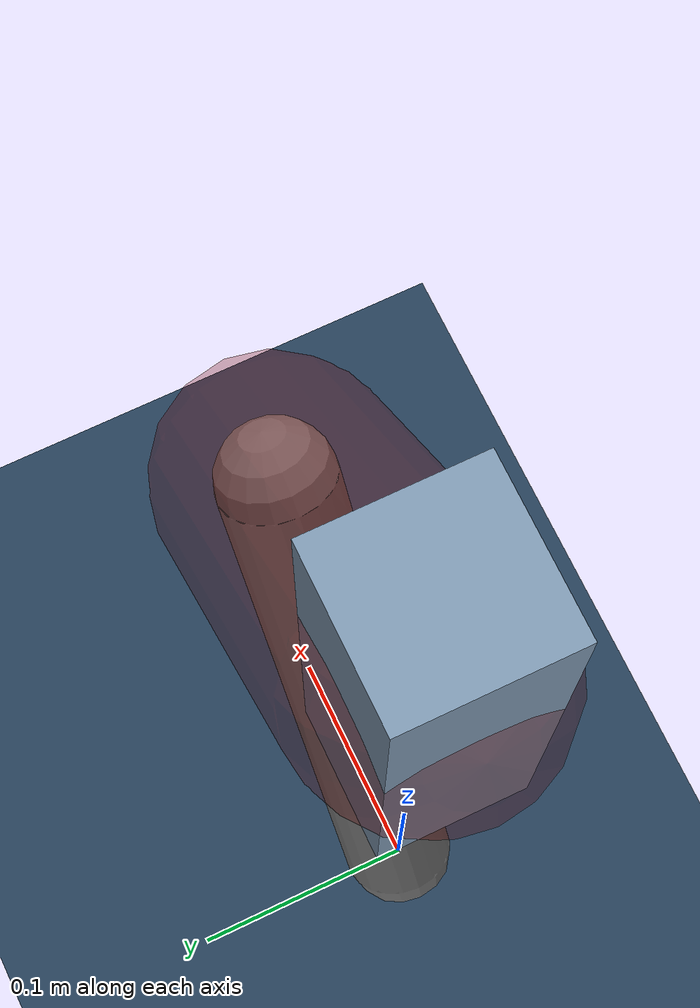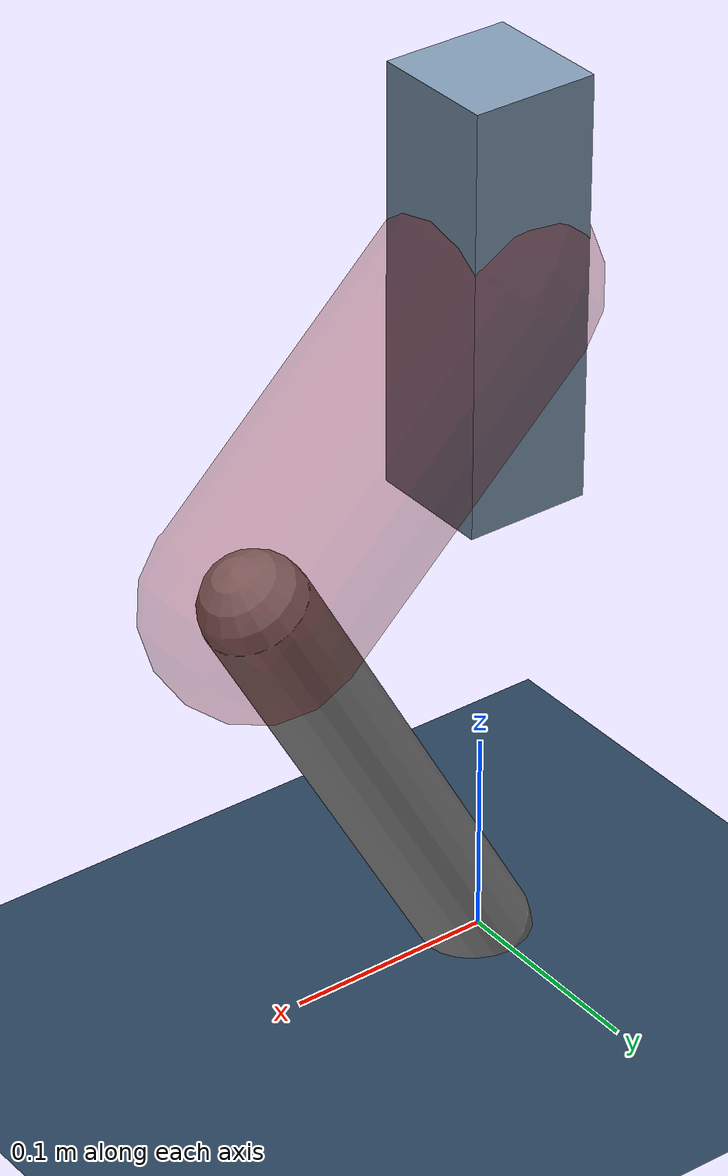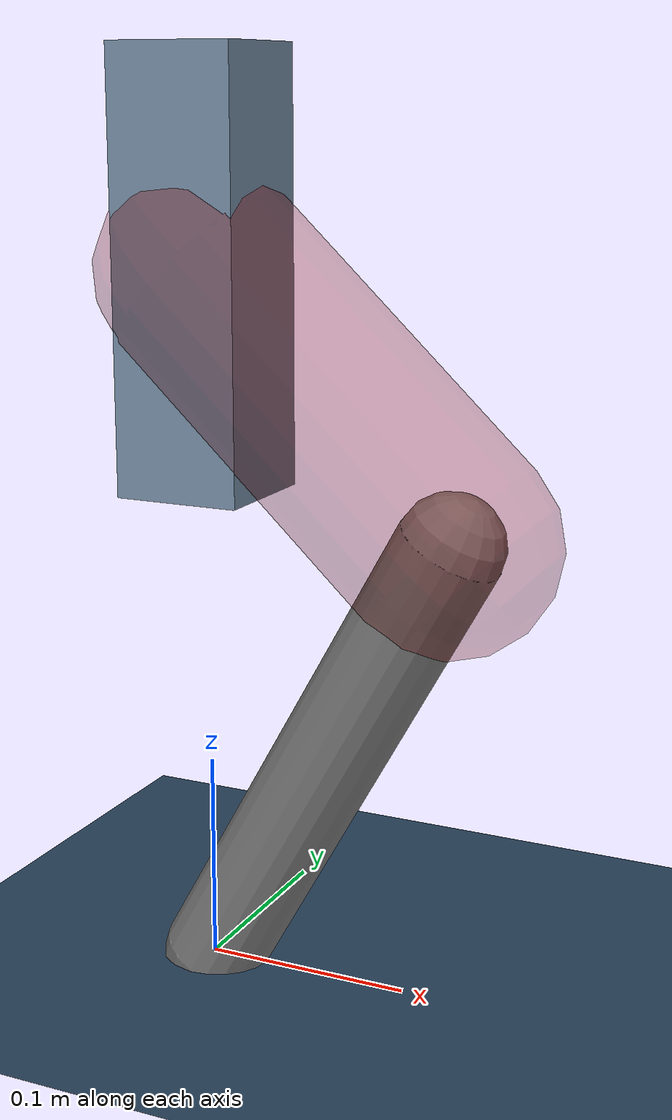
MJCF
<mujoco model="Hopper2D">
	<compiler inertiafromgeom="true" angle="radian" />
	<option timestep="0.001" integrator="implicit" cone="elliptic" solver="Newton" tolerance="1e-10" />

	<default>
		<geom contype="1" conaffinity="1" condim="3" friction="2 0.005 0.0001" solref="0.005 1" />
		<joint limited="true" damping="0.1" />
	</default>

	<asset>
		<texture name="skybox" type="skybox" builtin="gradient" rgb1=".4 .6 .8" rgb2="0 0 0" width="800" height="800" />
		<texture name="grid" type="2d" builtin="checker" rgb1=".1 .2 .3" rgb2=".2 .3 .4" width="300" height="300" mark="edge" markrgb=".2 .3 .4" />
		<material name="ground" texture="grid" texrepeat="1 1" texuniform="true" reflectance="0.1" />
		<material name="leg" rgba="0.5 0.6 0.7 1" />
	</asset>

	<worldbody>

		<geom name="floor" type="plane" size="5 5 0.25" material="ground" />

		<light directional="false" diffuse="0.8 0.8 0.8" specular="0.3 0.3 0.3" pos="0 0 2" dir="0 0 -1" />
		<light mode="targetbodycom" target="base" directional="false" diffuse="0.8 0.8 0.8" specular="0.3 0.3 0.3" pos="0 0 2" dir="0 0 -1" />

		<camera name="fixed" pos="0 -2 1" xyaxes="1 0 0 0 0 1" />
		<camera name="tracking" mode="trackcom" pos="0 -3 1" />

		<body name="root" pos="0 0 0.3324176467431898">
			<joint name="slide_x" type="slide" axis="1 0 0" range="-100 100" />
			<joint name="slide_z" type="slide" axis="0 0 1" range="0 10" />

			<body name="base" pos="0 0 0">
				<geom name="torso" type="box" size="0.03 0.03 0.1" mass="2.243" material="leg" />

				<body name="link1" pos="0 0 0" euler="0 0.7563000610924399 0">
					<joint type="hinge" axis="0 -1 0" pos="0 0 0" name="hinge1" limited="true" range="-3.14 3.14" stiffness="0" damping="0.1" />
					<geom name="thigh" type="capsule" fromto="0 0 0 0.16608057596829426 0 0" size="0.05" rgba="0.5 0 0 0.3" mass="0.6468933823239063" />

					<body name="link2" pos="0.16608057596829426 0 0" euler="0 1.319647885354456 0">
						<joint type="hinge" axis="0 -1 0" pos="0 0 0" name="hinge2" limited="true" range="-3.14 3.14" stiffness="0" damping="0.1" />
						<geom name="shank" type="capsule" fromto="0 0 0 0.24962528225646025 0 0" size="0.025" mass="0.4422002258051682" />

					</body>
				</body>
			</body>
		</body>
	</worldbody>

	<actuator>
		<motor name="torque1" joint="hinge1" ctrlrange="-96.38495715558138 96.38495715558138" ctrllimited="true" gear="1" />
		<motor name="torque2" joint="hinge2" ctrlrange="-49.95082235371904 49.95082235371904" ctrllimited="true" gear="1" />
	</actuator>
</mujoco>
